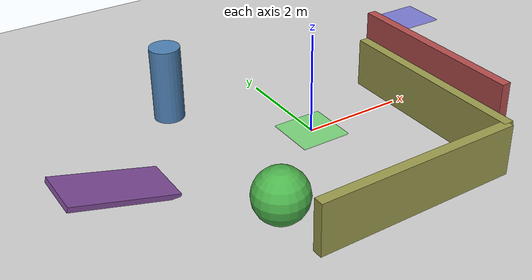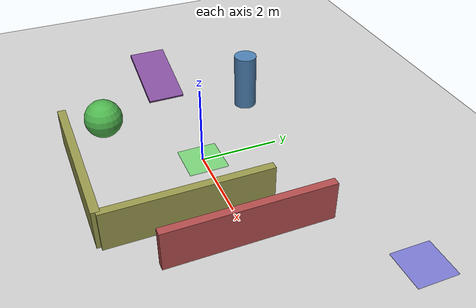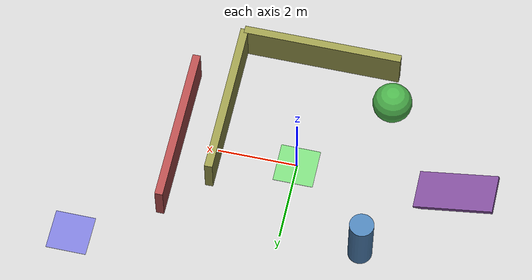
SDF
<?xml version="1.0" ?>
<sdf version="1.8">
  <world name="obstacle_course">

    <!-- Physics Engine Configuration -->
    <physics name="1ms" type="ode">
      <max_step_size>0.001</max_step_size>
      <real_time_factor>1.0</real_time_factor>
      <real_time_update_rate>1000.0</real_time_update_rate>
    </physics>

    <!-- Gravity -->
    <gravity>0 0 -9.81</gravity>

    <!-- Scene -->
    <scene>
      <ambient>0.4 0.4 0.4 1</ambient>
      <background>0.7 0.7 0.7 1</background>
      <shadows>true</shadows>
    </scene>

    <!-- Sun -->
    <light type="directional" name="sun">
      <cast_shadows>true</cast_shadows>
      <pose>0 0 10 0 0 0</pose>
      <diffuse>0.8 0.8 0.8 1</diffuse>
      <specular>0.2 0.2 0.2 1</specular>
      <direction>-0.5 0.1 -0.9</direction>
    </light>

    <!-- Ground Plane -->
    <model name="ground_plane">
      <static>true</static>
      <link name="link">
        <collision name="collision">
          <geometry>
            <plane>
              <normal>0 0 1</normal>
              <size>100 100</size>
            </plane>
          </geometry>
          <surface>
            <friction>
              <ode>
                <mu>0.6</mu>
                <mu2>0.6</mu2>
              </ode>
            </friction>
          </surface>
        </collision>
        <visual name="visual">
          <geometry>
            <plane>
              <normal>0 0 1</normal>
              <size>100 100</size>
            </plane>
          </geometry>
          <material>
            <ambient>0.8 0.8 0.8 1</ambient>
            <diffuse>0.8 0.8 0.8 1</diffuse>
          </material>
        </visual>
      </link>
    </model>

    <!-- Obstacle 1: Large Box (Wall) -->
    <model name="box_wall">
      <static>true</static>
      <pose>3 0 0.5 0 0 0</pose>  <!-- x y z roll pitch yaw -->
      <link name="link">
        <collision name="collision">
          <geometry>
            <box>
              <size>0.2 4.0 1.0</size>  <!-- Thin wall: 20cm x 4m x 1m -->
            </box>
          </geometry>
        </collision>
        <visual name="visual">
          <geometry>
            <box>
              <size>0.2 4.0 1.0</size>
            </box>
          </geometry>
          <material>
            <ambient>0.7 0.3 0.3 1</ambient>
            <diffuse>0.7 0.3 0.3 1</diffuse>
          </material>
        </visual>
      </link>
    </model>

    <!-- Obstacle 2: Cylinder (Column) -->
    <model name="cylinder_column">
      <static>true</static>
      <pose>-2 2 0.75 0 0 0</pose>
      <link name="link">
        <collision name="collision">
          <geometry>
            <cylinder>
              <radius>0.3</radius>
              <length>1.5</length>  <!-- 1.5m tall column -->
            </cylinder>
          </geometry>
        </collision>
        <visual name="visual">
          <geometry>
            <cylinder>
              <radius>0.3</radius>
              <length>1.5</length>
            </cylinder>
          </geometry>
          <material>
            <ambient>0.3 0.5 0.7 1</ambient>
            <diffuse>0.3 0.5 0.7 1</diffuse>
          </material>
        </visual>
      </link>
    </model>

    <!-- Obstacle 3: Sphere (Ball) -->
    <model name="sphere_obstacle">
      <static>true</static>
      <pose>-2 -2 0.5 0 0 0</pose>
      <link name="link">
        <collision name="collision">
          <geometry>
            <sphere>
              <radius>0.5</radius>  <!-- 50cm radius sphere -->
            </sphere>
          </geometry>
        </collision>
        <visual name="visual">
          <geometry>
            <sphere>
              <radius>0.5</radius>
            </sphere>
          </geometry>
          <material>
            <ambient>0.3 0.7 0.3 1</ambient>
            <diffuse>0.3 0.7 0.3 1</diffuse>
          </material>
        </visual>
      </link>
    </model>

    <!-- Obstacle 4: L-Shaped Wall (Composite) -->
    <model name="l_wall_segment1">
      <static>true</static>
      <pose>0 -3 0.5 0 0 0</pose>
      <link name="link">
        <collision name="collision">
          <geometry>
            <box>
              <size>4.0 0.2 1.0</size>  <!-- Horizontal segment: 4m x 20cm x 1m -->
            </box>
          </geometry>
        </collision>
        <visual name="visual">
          <geometry>
            <box>
              <size>4.0 0.2 1.0</size>
            </box>
          </geometry>
          <material>
            <ambient>0.6 0.6 0.3 1</ambient>
            <diffuse>0.6 0.6 0.3 1</diffuse>
          </material>
        </visual>
      </link>
    </model>

    <model name="l_wall_segment2">
      <static>true</static>
      <pose>2 -1 0.5 0 0 0</pose>
      <link name="link">
        <collision name="collision">
          <geometry>
            <box>
              <size>0.2 4.0 1.0</size>  <!-- Vertical segment: 20cm x 4m x 1m -->
            </box>
          </geometry>
        </collision>
        <visual name="visual">
          <geometry>
            <box>
              <size>0.2 4.0 1.0</size>
            </box>
          </geometry>
          <material>
            <ambient>0.6 0.6 0.3 1</ambient>
            <diffuse>0.6 0.6 0.3 1</diffuse>
          </material>
        </visual>
      </link>
    </model>

    <!-- Obstacle 5: Ramp (Inclined Plane) -->
    <model name="ramp">
      <static>true</static>
      <pose>-4 0 0.25 0 0.2618 0</pose>  <!-- Rotated 15° around Y-axis (0.2618 rad) -->
      <link name="link">
        <collision name="collision">
          <geometry>
            <box>
              <size>2.0 1.0 0.1</size>  <!-- 2m x 1m x 10cm ramp -->
            </box>
          </geometry>
          <surface>
            <friction>
              <ode>
                <mu>0.8</mu>  <!-- Higher friction to prevent sliding -->
                <mu2>0.8</mu2>
              </ode>
            </friction>
          </surface>
        </collision>
        <visual name="visual">
          <geometry>
            <box>
              <size>2.0 1.0 0.1</size>
            </box>
          </geometry>
          <material>
            <ambient>0.5 0.3 0.6 1</ambient>
            <diffuse>0.5 0.3 0.6 1</diffuse>
          </material>
        </visual>
      </link>
    </model>

    <!-- Start Zone Marker (Green Box, no collision) -->
    <model name="start_zone">
      <static>true</static>
      <pose>0 0 0.01 0 0 0</pose>
      <link name="link">
        <visual name="visual">
          <geometry>
            <box>
              <size>1.0 1.0 0.02</size>  <!-- Flat marker on ground -->
            </box>
          </geometry>
          <material>
            <ambient>0.2 0.9 0.2 0.5</ambient>
            <diffuse>0.2 0.9 0.2 0.5</diffuse>
            <transparency>0.5</transparency>
          </material>
        </visual>
      </link>
    </model>

    <!-- Goal Zone Marker (Blue Box, no collision) -->
    <model name="goal_zone">
      <static>true</static>
      <pose>5 3 0.01 0 0 0</pose>
      <link name="link">
        <visual name="visual">
          <geometry>
            <box>
              <size>1.0 1.0 0.02</size>
            </box>
          </geometry>
          <material>
            <ambient>0.2 0.2 0.9 0.5</ambient>
            <diffuse>0.2 0.2 0.9 0.5</diffuse>
            <transparency>0.5</transparency>
          </material>
        </visual>
      </link>
    </model>

  </world>
</sdf>
